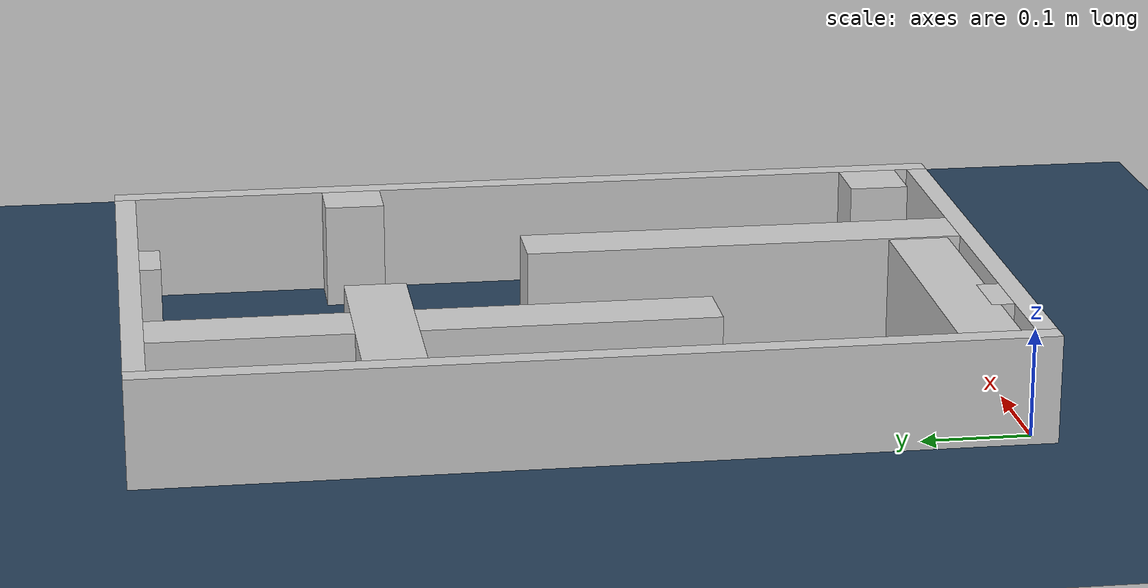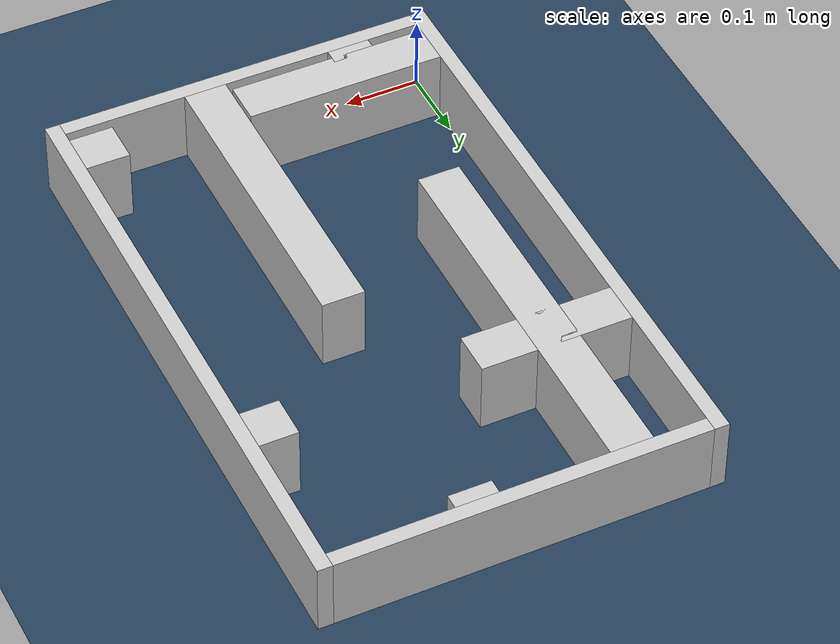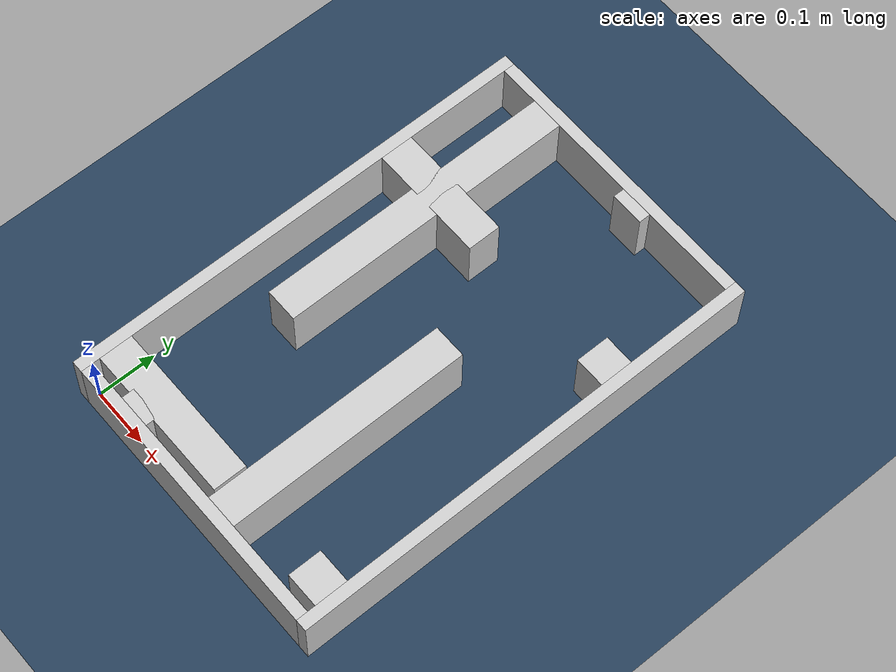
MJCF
<?xml version="1.0" ?>
<mujoco model="generated_real_template">
  <compiler angle="degree"/>
  <option timestep="0.002" integrator="implicitfast" iterations="100" cone="elliptic"/>
  <default>
    <geom density="1"/>
  </default>
  <asset>
    <texture builtin="gradient" height="3072" rgb1="0.3 0.5 0.7" rgb2="0 0 0" type="skybox" width="512"/>
    <texture builtin="checker" height="300" mark="edge" markrgb="0.8 0.8 0.8" name="groundplane" rgb1="0.2 0.3 0.4" rgb2="0.1 0.2 0.3" type="2d" width="300"/>
    <material name="groundplane" reflectance="0.2" texrepeat="5 5" texture="groundplane" texuniform="true"/>
  </asset>
  <worldbody>
    <light dir="0 0 -1" directional="true" pos="0 0 1.5"/>
    <geom name="floor" type="plane" condim="4" friction="0.5 0.005 0.001" material="groundplane" size="0 0 0.05"/>
    <body name="walls">
      <geom name="wall_boundary_left" type="box" condim="4" friction="1.0 0.005 0.0001" rgba="0.8 0.8 0.8 1" pos="-0.010000 0.387500 0.050000" euler="0 0 0.000000" size="0.010000 0.407500 0.050000"/>
      <geom name="wall_boundary_right" type="box" condim="4" friction="1.0 0.005 0.0001" rgba="0.8 0.8 0.8 1" pos="0.500000 0.387500 0.050000" euler="0 0 0.000000" size="0.010000 0.407500 0.050000"/>
      <geom name="wall_boundary_bottom" type="box" condim="4" friction="1.0 0.005 0.0001" rgba="0.8 0.8 0.8 1" pos="0.245000 -0.010000 0.050000" euler="0 0 0.000000" size="0.245000 0.010000 0.050000"/>
      <geom name="wall_boundary_top" type="box" condim="4" friction="1.0 0.005 0.0001" rgba="0.8 0.8 0.8 1" pos="0.245000 0.785000 0.050000" euler="0 0 0.000000" size="0.245000 0.010000 0.050000"/>
      <geom name="wall_inner_1_1" type="box" condim="4" friction="1.0 0.005 0.0001" rgba="0.8 0.8 0.8 1" pos="0.133227 0.041396 0.050000" euler="0 0 0.000000" size="0.133227 0.028500 0.050000"/>
      <geom name="wall_inner_1_2" type="box" condim="4" friction="1.0 0.005 0.0001" rgba="0.8 0.8 0.8 1" pos="0.460792 0.041396 0.050000" euler="0 0 0.000000" size="0.029208 0.028500 0.050000"/>
      <geom name="wall_inner_2_1" type="box" condim="4" friction="1.0 0.005 0.0001" rgba="0.8 0.8 0.8 1" pos="0.100673 0.563227 0.050000" euler="0 0 0.000000" size="0.100673 0.028500 0.050000"/>
      <geom name="wall_inner_2_2" type="box" condim="4" friction="1.0 0.005 0.0001" rgba="0.8 0.8 0.8 1" pos="0.464189 0.563227 0.050000" euler="0 0 0.000000" size="0.025811 0.028500 0.050000"/>
      <geom name="wall_inner_3_1" type="box" condim="4" friction="1.0 0.005 0.0001" rgba="0.8 0.8 0.8 1" pos="0.098326 0.010500 0.050000" euler="0 0 90.000000" size="0.010500 0.028500 0.050000"/>
      <geom name="wall_inner_3_2" type="box" condim="4" friction="1.0 0.005 0.0001" rgba="0.8 0.8 0.8 1" pos="0.098326 0.519988 0.050000" euler="0 0 90.000000" size="0.255012 0.028500 0.050000"/>
      <geom name="wall_inner_4_1" type="box" condim="4" friction="1.0 0.005 0.0001" rgba="0.8 0.8 0.8 1" pos="0.298678 0.207291 0.050000" euler="0 0 90.000000" size="0.207291 0.028500 0.050000"/>
      <geom name="wall_inner_4_2" type="box" condim="4" friction="1.0 0.005 0.0001" rgba="0.8 0.8 0.8 1" pos="0.298678 0.765204 0.050000" euler="0 0 90.000000" size="0.009796 0.028500 0.050000"/>
    </body>
  </worldbody>
</mujoco>
